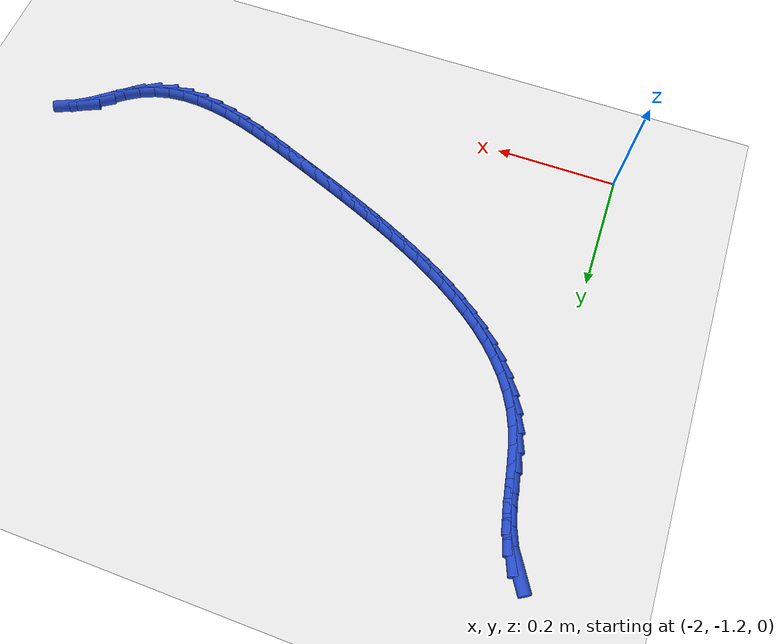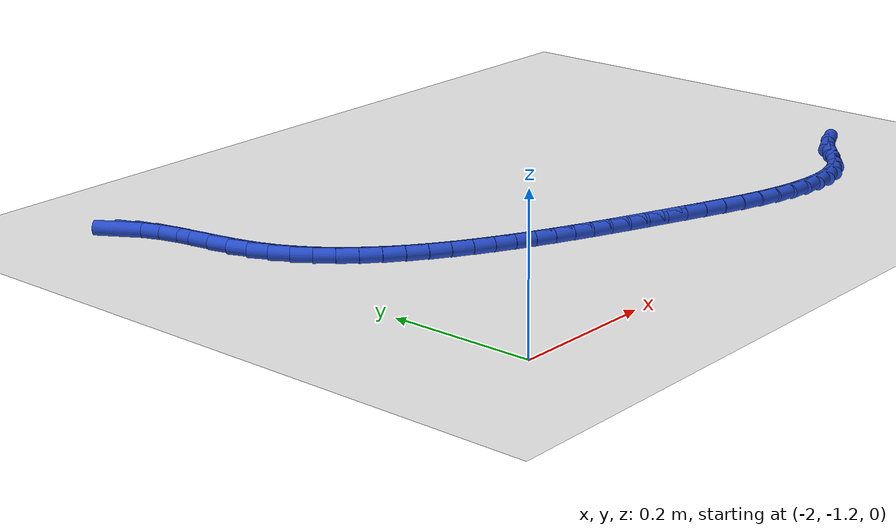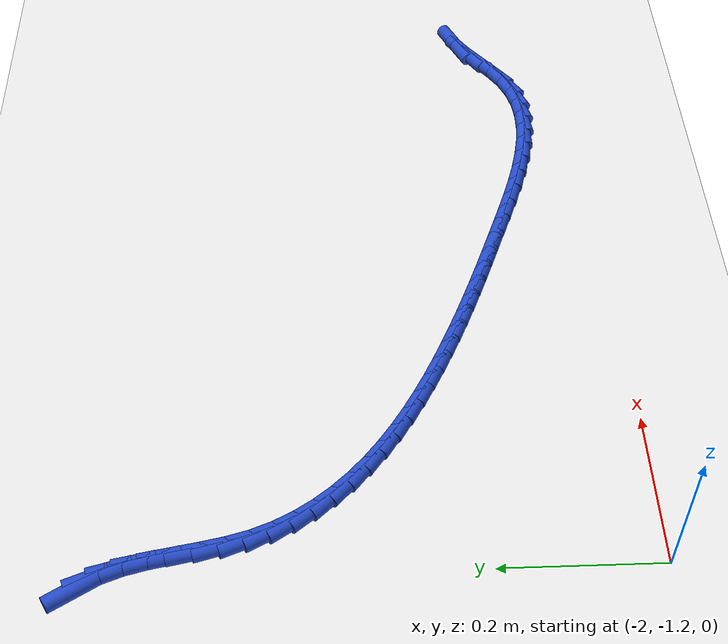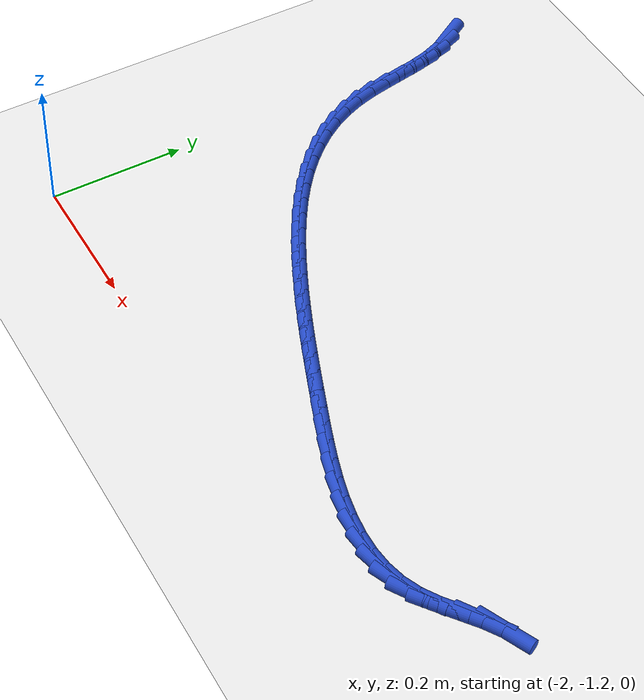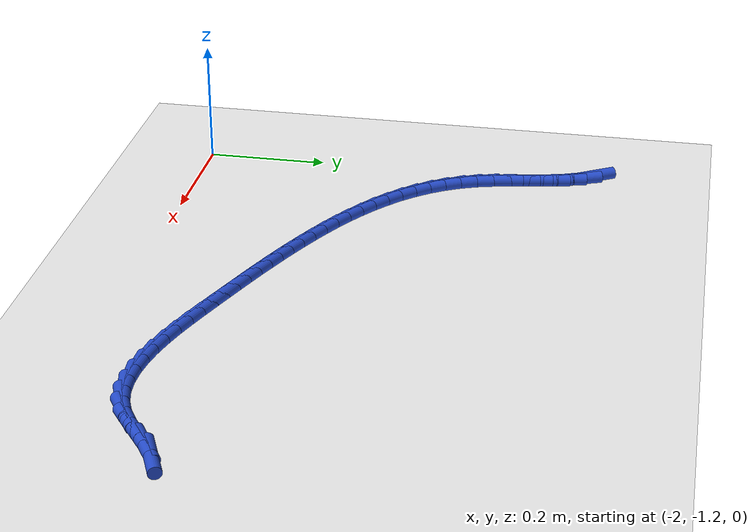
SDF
<sdf version="1.6">
 <world name="default">
  <model name="ground_plane">
   <static>1</static>
   <link name="link">
    <collision name="collision">
     <geometry><plane><normal>0 0 1</normal><size>100 100</size></plane></geometry>
     <surface><friction><ode><mu>100</mu><mu2>50</mu2></ode></friction></surface>
    </collision>
    <visual name="visual">
     <cast_shadows>0</cast_shadows>
     <geometry><plane><normal>0 0 1</normal><size>100 100</size></plane></geometry>
     <material>
      <script><uri>file://media/materials/scripts/gazebo.material</uri><name>Gazebo/WhiteGlow</name></script>
     </material>
    </visual>
   </link>
  </model>
  <model name="line">
   <link name="link_152">
    <pose>-2.0117051449335945 -0.5320468453960208 0.01 0 1.57 -1.0325894245453242</pose>
    <collision name="collision">
     <geometry><cylinder><radius>0.01</radius><length>0.08</length></cylinder></geometry>
    </collision>
    <visual name="visual">
     <material>
      <script><name>Gazebo/Blue</name><uri>file://media/materials/scripts/gazebo.material</uri></script>
     </material>
     <geometry><cylinder><radius>0.01</radius><length>0.08</length></cylinder></geometry>
    </visual>
   </link>
   <link name="link_153">
    <pose>-1.998287294087815 -0.5545225012858197 0.01 0 1.57 -1.2055088570923098</pose>
    <collision name="collision">
     <geometry><cylinder><radius>0.01</radius><length>0.08</length></cylinder></geometry>
    </collision>
    <visual name="visual">
     <material>
      <script><name>Gazebo/Blue</name><uri>file://media/materials/scripts/gazebo.material</uri></script>
     </material>
     <geometry><cylinder><radius>0.01</radius><length>0.08</length></cylinder></geometry>
    </visual>
   </link>
   <link name="link_154">
    <pose>-1.9885573423364409 -0.5799635068408499 0.01 0 1.57 -1.3176892582512643</pose>
    <collision name="collision">
     <geometry><cylinder><radius>0.01</radius><length>0.08</length></cylinder></geometry>
    </collision>
    <visual name="visual">
     <material>
      <script><name>Gazebo/Blue</name><uri>file://media/materials/scripts/gazebo.material</uri></script>
     </material>
     <geometry><cylinder><radius>0.01</radius><length>0.08</length></cylinder></geometry>
    </visual>
   </link>
   <link name="link_155">
    <pose>-1.9814133158013287 -0.607583496486258 0.01 0 1.57 -1.3781261660319097</pose>
    <collision name="collision">
     <geometry><cylinder><radius>0.01</radius><length>0.08</length></cylinder></geometry>
    </collision>
    <visual name="visual">
     <material>
      <script><name>Gazebo/Blue</name><uri>file://media/materials/scripts/gazebo.material</uri></script>
     </material>
     <geometry><cylinder><radius>0.01</radius><length>0.08</length></cylinder></geometry>
    </visual>
   </link>
   <link name="link_156">
    <pose>-1.9757532406043368 -0.636596104647192 0.01 0 1.57 -1.3944468982966307</pose>
    <collision name="collision">
     <geometry><cylinder><radius>0.01</radius><length>0.08</length></cylinder></geometry>
    </collision>
    <visual name="visual">
     <material>
      <script><name>Gazebo/Blue</name><uri>file://media/materials/scripts/gazebo.material</uri></script>
     </material>
     <geometry><cylinder><radius>0.01</radius><length>0.08</length></cylinder></geometry>
    </visual>
   </link>
   <link name="link_157">
    <pose>-1.9704751428673213 -0.6662149657487972 0.01 0 1.57 -1.3697992700527275</pose>
    <collision name="collision">
     <geometry><cylinder><radius>0.01</radius><length>0.08</length></cylinder></geometry>
    </collision>
    <visual name="visual">
     <material>
      <script><name>Gazebo/Blue</name><uri>file://media/materials/scripts/gazebo.material</uri></script>
     </material>
     <geometry><cylinder><radius>0.01</radius><length>0.08</length></cylinder></geometry>
    </visual>
   </link>
   <link name="link_158">
    <pose>-1.9644770487121412 -0.6956537142162216 0.01 0 1.57 -1.3027552645302882</pose>
    <collision name="collision">
     <geometry><cylinder><radius>0.01</radius><length>0.08</length></cylinder></geometry>
    </collision>
    <visual name="visual">
     <material>
      <script><name>Gazebo/Blue</name><uri>file://media/materials/scripts/gazebo.material</uri></script>
     </material>
     <geometry><cylinder><radius>0.01</radius><length>0.08</length></cylinder></geometry>
    </visual>
   </link>
   <link name="link_159">
    <pose>-1.9566571092704614 -0.7241260648157887 0.01 0 1.57 -1.1999468880581274</pose>
    <collision name="collision">
     <geometry><cylinder><radius>0.01</radius><length>0.08</length></cylinder></geometry>
    </collision>
    <visual name="visual">
     <material>
      <script><name>Gazebo/Blue</name><uri>file://media/materials/scripts/gazebo.material</uri></script>
     </material>
     <geometry><cylinder><radius>0.01</radius><length>0.08</length></cylinder></geometry>
    </visual>
   </link>
   <link name="link_160">
    <pose>-1.9461966496676708 -0.7510277222876124 0.01 0 1.57 -1.0950335316175266</pose>
    <collision name="collision">
     <geometry><cylinder><radius>0.01</radius><length>0.08</length></cylinder></geometry>
    </collision>
    <visual name="visual">
     <material>
      <script><name>Gazebo/Blue</name><uri>file://media/materials/scripts/gazebo.material</uri></script>
     </material>
     <geometry><cylinder><radius>0.01</radius><length>0.08</length></cylinder></geometry>
    </visual>
   </link>
   <link name="link_161">
    <pose>-1.9331631273899914 -0.7763238900146856 0.01 0 1.57 -0.9968584307055662</pose>
    <collision name="collision">
     <geometry><cylinder><radius>0.01</radius><length>0.08</length></cylinder></geometry>
    </collision>
    <visual name="visual">
     <material>
      <script><name>Gazebo/Blue</name><uri>file://media/materials/scripts/gazebo.material</uri></script>
     </material>
     <geometry><cylinder><radius>0.01</radius><length>0.08</length></cylinder></geometry>
    </visual>
   </link>
   <link name="link_162">
    <pose>-1.9177968641425782 -0.8000908675801119 0.01 0 1.57 -0.9068756871852821</pose>
    <collision name="collision">
     <geometry><cylinder><radius>0.01</radius><length>0.08</length></cylinder></geometry>
    </collision>
    <visual name="visual">
     <material>
      <script><name>Gazebo/Blue</name><uri>file://media/materials/scripts/gazebo.material</uri></script>
     </material>
     <geometry><cylinder><radius>0.01</radius><length>0.08</length></cylinder></geometry>
    </visual>
   </link>
   <link name="link_163">
    <pose>-1.9003381816305867 -0.8224049545669954 0.01 0 1.57 -0.8257932108269734</pose>
    <collision name="collision">
     <geometry><cylinder><radius>0.01</radius><length>0.08</length></cylinder></geometry>
    </collision>
    <visual name="visual">
     <material>
      <script><name>Gazebo/Blue</name><uri>file://media/materials/scripts/gazebo.material</uri></script>
     </material>
     <geometry><cylinder><radius>0.01</radius><length>0.08</length></cylinder></geometry>
    </visual>
   </link>
   <link name="link_164">
    <pose>-1.881027401559171 -0.8433424505584398 0.01 0 1.57 -0.7537184565327799</pose>
    <collision name="collision">
     <geometry><cylinder><radius>0.01</radius><length>0.08</length></cylinder></geometry>
    </collision>
    <visual name="visual">
     <material>
      <script><name>Gazebo/Blue</name><uri>file://media/materials/scripts/gazebo.material</uri></script>
     </material>
     <geometry><cylinder><radius>0.01</radius><length>0.08</length></cylinder></geometry>
    </visual>
   </link>
   <link name="link_165">
    <pose>-1.8601048456334857 -0.8629796551375496 0.01 0 1.57 -0.69035105141206</pose>
    <collision name="collision">
     <geometry><cylinder><radius>0.01</radius><length>0.08</length></cylinder></geometry>
    </collision>
    <visual name="visual">
     <material>
      <script><name>Gazebo/Blue</name><uri>file://media/materials/scripts/gazebo.material</uri></script>
     </material>
     <geometry><cylinder><radius>0.01</radius><length>0.08</length></cylinder></geometry>
    </visual>
   </link>
   <link name="link_166">
    <pose>-1.8378108355586864 -0.8813928678874274 0.01 0 1.57 -0.6351619930854608</pose>
    <collision name="collision">
     <geometry><cylinder><radius>0.01</radius><length>0.08</length></cylinder></geometry>
    </collision>
    <visual name="visual">
     <material>
      <script><name>Gazebo/Blue</name><uri>file://media/materials/scripts/gazebo.material</uri></script>
     </material>
     <geometry><cylinder><radius>0.01</radius><length>0.08</length></cylinder></geometry>
    </visual>
   </link>
   <link name="link_167">
    <pose>-1.8143856930399274 -0.8986583883911771 0.01 0 1.57 -0.5875324610035325</pose>
    <collision name="collision">
     <geometry><cylinder><radius>0.01</radius><length>0.08</length></cylinder></geometry>
    </collision>
    <visual name="visual">
     <material>
      <script><name>Gazebo/Blue</name><uri>file://media/materials/scripts/gazebo.material</uri></script>
     </material>
     <geometry><cylinder><radius>0.01</radius><length>0.08</length></cylinder></geometry>
    </visual>
   </link>
   <link name="link_168">
    <pose>-1.7900697397823644 -0.9148525162319033 0.01 0 1.57 -0.5468493320388581</pose>
    <collision name="collision">
     <geometry><cylinder><radius>0.01</radius><length>0.08</length></cylinder></geometry>
    </collision>
    <visual name="visual">
     <material>
      <script><name>Gazebo/Blue</name><uri>file://media/materials/scripts/gazebo.material</uri></script>
     </material>
     <geometry><cylinder><radius>0.01</radius><length>0.08</length></cylinder></geometry>
    </visual>
   </link>
   <link name="link_169">
    <pose>-1.7651032974911514 -0.9300515509927096 0.01 0 1.57 -0.5125660088315089</pose>
    <collision name="collision">
     <geometry><cylinder><radius>0.01</radius><length>0.08</length></cylinder></geometry>
    </collision>
    <visual name="visual">
     <material>
      <script><name>Gazebo/Blue</name><uri>file://media/materials/scripts/gazebo.material</uri></script>
     </material>
     <geometry><cylinder><radius>0.01</radius><length>0.08</length></cylinder></geometry>
    </visual>
   </link>
   <link name="link_170">
    <pose>-1.7397266878714435 -0.9443317922566998 0.01 0 1.57 -0.4842401712869968</pose>
    <collision name="collision">
     <geometry><cylinder><radius>0.01</radius><length>0.08</length></cylinder></geometry>
    </collision>
    <visual name="visual">
     <material>
      <script><name>Gazebo/Blue</name><uri>file://media/materials/scripts/gazebo.material</uri></script>
     </material>
     <geometry><cylinder><radius>0.01</radius><length>0.08</length></cylinder></geometry>
    </visual>
   </link>
   <link name="link_171">
    <pose>-1.7141802326283955 -0.9577695396069774 0.01 0 1.57 -0.4615549454100223</pose>
    <collision name="collision">
     <geometry><cylinder><radius>0.01</radius><length>0.08</length></cylinder></geometry>
    </collision>
    <visual name="visual">
     <material>
      <script><name>Gazebo/Blue</name><uri>file://media/materials/scripts/gazebo.material</uri></script>
     </material>
     <geometry><cylinder><radius>0.01</radius><length>0.08</length></cylinder></geometry>
    </visual>
   </link>
   <link name="link_172">
    <pose>-1.6887038919279704 -0.9704411377533622 0.01 0 1.57 -0.4432140611177519</pose>
    <collision name="collision">
     <geometry><cylinder><radius>0.01</radius><length>0.08</length></cylinder></geometry>
    </collision>
    <visual name="visual">
     <material>
      <script><name>Gazebo/Blue</name><uri>file://media/materials/scripts/gazebo.material</uri></script>
     </material>
     <geometry><cylinder><radius>0.01</radius><length>0.08</length></cylinder></geometry>
    </visual>
   </link>
   <link name="link_173">
    <pose>-1.6634374740991313 -0.9824354321899592 0.01 0 1.57 -0.4266987657591983</pose>
    <collision name="collision">
     <geometry><cylinder><radius>0.01</radius><length>0.08</length></cylinder></geometry>
    </collision>
    <visual name="visual">
     <material>
      <script><name>Gazebo/Blue</name><uri>file://media/materials/scripts/gazebo.material</uri></script>
     </material>
     <geometry><cylinder><radius>0.01</radius><length>0.08</length></cylinder></geometry>
    </visual>
   </link>
   <link name="link_174">
    <pose>-1.638284512138975 -0.9938707599014378 0.01 0 1.57 -0.41197888196226135</pose>
    <collision name="collision">
     <geometry><cylinder><radius>0.01</radius><length>0.08</length></cylinder></geometry>
    </collision>
    <visual name="visual">
     <material>
      <script><name>Gazebo/Blue</name><uri>file://media/materials/scripts/gazebo.material</uri></script>
     </material>
     <geometry><cylinder><radius>0.01</radius><length>0.08</length></cylinder></geometry>
    </visual>
   </link>
   <link name="link_175">
    <pose>-1.6131144827029524 -1.0048697087279002 0.01 0 1.57 -0.3993644971627681</pose>
    <collision name="collision">
     <geometry><cylinder><radius>0.01</radius><length>0.08</length></cylinder></geometry>
    </collision>
    <visual name="visual">
     <material>
      <script><name>Gazebo/Blue</name><uri>file://media/materials/scripts/gazebo.material</uri></script>
     </material>
     <geometry><cylinder><radius>0.01</radius><length>0.08</length></cylinder></geometry>
    </visual>
   </link>
   <link name="link_176">
    <pose>-1.5877968624465137 -1.0155548665094498 0.01 0 1.57 -0.3890873128834783</pose>
    <collision name="collision">
     <geometry><cylinder><radius>0.01</radius><length>0.08</length></cylinder></geometry>
    </collision>
    <visual name="visual">
     <material>
      <script><name>Gazebo/Blue</name><uri>file://media/materials/scripts/gazebo.material</uri></script>
     </material>
     <geometry><cylinder><radius>0.01</radius><length>0.08</length></cylinder></geometry>
    </visual>
   </link>
   <link name="link_177">
    <pose>-1.5622011280251085 -1.0260488210861884 0.01 0 1.57 -0.38128817727152114</pose>
    <collision name="collision">
     <geometry><cylinder><radius>0.01</radius><length>0.08</length></cylinder></geometry>
    </collision>
    <visual name="visual">
     <material>
      <script><name>Gazebo/Blue</name><uri>file://media/materials/scripts/gazebo.material</uri></script>
     </material>
     <geometry><cylinder><radius>0.01</radius><length>0.08</length></cylinder></geometry>
    </visual>
   </link>
   <link name="link_178">
    <pose>-1.5361967560941876 -1.0364741602982195 0.01 0 1.57 -0.3760131498353158</pose>
    <collision name="collision">
     <geometry><cylinder><radius>0.01</radius><length>0.08</length></cylinder></geometry>
    </collision>
    <visual name="visual">
     <material>
      <script><name>Gazebo/Blue</name><uri>file://media/materials/scripts/gazebo.material</uri></script>
     </material>
     <geometry><cylinder><radius>0.01</radius><length>0.08</length></cylinder></geometry>
    </visual>
   </link>
   <link name="link_179">
    <pose>-1.5096532233092015 -1.0469534719856457 0.01 0 1.57 -0.37321784291937765</pose>
    <collision name="collision">
     <geometry><cylinder><radius>0.01</radius><length>0.08</length></cylinder></geometry>
    </collision>
    <visual name="visual">
     <material>
      <script><name>Gazebo/Blue</name><uri>file://media/materials/scripts/gazebo.material</uri></script>
     </material>
     <geometry><cylinder><radius>0.01</radius><length>0.08</length></cylinder></geometry>
    </visual>
   </link>
   <link name="link_180">
    <pose>-1.482440006332732 -1.0576093439764602 0.01 0 1.57 -0.3704847200510748</pose>
    <collision name="collision">
     <geometry><cylinder><radius>0.01</radius><length>0.08</length></cylinder></geometry>
    </collision>
    <visual name="visual">
     <material>
      <script><name>Gazebo/Blue</name><uri>file://media/materials/scripts/gazebo.material</uri></script>
     </material>
     <geometry><cylinder><radius>0.01</radius><length>0.08</length></cylinder></geometry>
    </visual>
   </link>
   <link name="link_181">
    <pose>-1.4544831091293253 -1.06846838734073 0.01 0 1.57 -0.3588853184038261</pose>
    <collision name="collision">
     <geometry><cylinder><radius>0.01</radius><length>0.08</length></cylinder></geometry>
    </collision>
    <visual name="visual">
     <material>
      <script><name>Gazebo/Blue</name><uri>file://media/materials/scripts/gazebo.material</uri></script>
     </material>
     <geometry><cylinder><radius>0.01</radius><length>0.08</length></cylinder></geometry>
    </visual>
   </link>
   <link name="link_182">
    <pose>-1.425931251357447 -1.07917906790722 0.01 0 1.57 -0.33629084404893106</pose>
    <collision name="collision">
     <geometry><cylinder><radius>0.01</radius><length>0.08</length></cylinder></geometry>
    </collision>
    <visual name="visual">
     <material>
      <script><name>Gazebo/Blue</name><uri>file://media/materials/scripts/gazebo.material</uri></script>
     </material>
     <geometry><cylinder><radius>0.01</radius><length>0.08</length></cylinder></geometry>
    </visual>
   </link>
   <link name="link_183">
    <pose>-1.3969879959150784 -1.0892967340881492 0.01 0 1.57 -0.3021508516372771</pose>
    <collision name="collision">
     <geometry><cylinder><radius>0.01</radius><length>0.08</length></cylinder></geometry>
    </collision>
    <visual name="visual">
     <material>
      <script><name>Gazebo/Blue</name><uri>file://media/materials/scripts/gazebo.material</uri></script>
     </material>
     <geometry><cylinder><radius>0.01</radius><length>0.08</length></cylinder></geometry>
    </visual>
   </link>
   <link name="link_184">
    <pose>-1.3678569057002048 -1.0983767342957371 0.01 0 1.57 -0.25525862849360703</pose>
    <collision name="collision">
     <geometry><cylinder><radius>0.01</radius><length>0.08</length></cylinder></geometry>
    </collision>
    <visual name="visual">
     <material>
      <script><name>Gazebo/Blue</name><uri>file://media/materials/scripts/gazebo.material</uri></script>
     </material>
     <geometry><cylinder><radius>0.01</radius><length>0.08</length></cylinder></geometry>
    </visual>
   </link>
   <link name="link_185">
    <pose>-1.3387415436108083 -1.1059744169422023 0.01 0 1.57 -0.1937825238472297</pose>
    <collision name="collision">
     <geometry><cylinder><radius>0.01</radius><length>0.08</length></cylinder></geometry>
    </collision>
    <visual name="visual">
     <material>
      <script><name>Gazebo/Blue</name><uri>file://media/materials/scripts/gazebo.material</uri></script>
     </material>
     <geometry><cylinder><radius>0.01</radius><length>0.08</length></cylinder></geometry>
    </visual>
   </link>
   <link name="link_186">
    <pose>-1.3098454725448734 -1.1116451304397632 0.01 0 1.57 -0.11535215844670921</pose>
    <collision name="collision">
     <geometry><cylinder><radius>0.01</radius><length>0.08</length></cylinder></geometry>
    </collision>
    <visual name="visual">
     <material>
      <script><name>Gazebo/Blue</name><uri>file://media/materials/scripts/gazebo.material</uri></script>
     </material>
     <geometry><cylinder><radius>0.01</radius><length>0.08</length></cylinder></geometry>
    </visual>
   </link>
   <link name="link_187">
    <pose>-1.2813722554003826 -1.1149442232006386 0.01 0 1.57 -0.017336715793493662</pose>
    <collision name="collision">
     <geometry><cylinder><radius>0.01</radius><length>0.08</length></cylinder></geometry>
    </collision>
    <visual name="visual">
     <material>
      <script><name>Gazebo/Blue</name><uri>file://media/materials/scripts/gazebo.material</uri></script>
     </material>
     <geometry><cylinder><radius>0.01</radius><length>0.08</length></cylinder></geometry>
    </visual>
   </link>
   <link name="link_188">
    <pose>-1.2535254550753197 -1.1154270436370477 0.01 0 1.57 0.10246851505401659</pose>
    <collision name="collision">
     <geometry><cylinder><radius>0.01</radius><length>0.08</length></cylinder></geometry>
    </collision>
    <visual name="visual">
     <material>
      <script><name>Gazebo/Blue</name><uri>file://media/materials/scripts/gazebo.material</uri></script>
     </material>
     <geometry><cylinder><radius>0.01</radius><length>0.08</length></cylinder></geometry>
    </visual>
   </link>
   <link name="link_189">
    <pose>-1.2265086344676686 -1.112648940161209 0.01 0 1.57 0.24453885605370293</pose>
    <collision name="collision">
     <geometry><cylinder><radius>0.01</radius><length>0.08</length></cylinder></geometry>
    </collision>
    <visual name="visual">
     <material>
      <script><name>Gazebo/Blue</name><uri>file://media/materials/scripts/gazebo.material</uri></script>
     </material>
     <geometry><cylinder><radius>0.01</radius><length>0.08</length></cylinder></geometry>
    </visual>
   </link>
   <link name="link_190">
    <pose>-1.200525356475413 -1.1061652611853412 0.01 0 1.57 0.40586107339789657</pose>
    <collision name="collision">
     <geometry><cylinder><radius>0.01</radius><length>0.08</length></cylinder></geometry>
    </collision>
    <visual name="visual">
     <material>
      <script><name>Gazebo/Blue</name><uri>file://media/materials/scripts/gazebo.material</uri></script>
     </material>
     <geometry><cylinder><radius>0.01</radius><length>0.08</length></cylinder></geometry>
    </visual>
   </link>
   <link name="link_191">
    <pose>-1.1757791839965357 -1.0955313551216634 0.01 0 1.57 0.5688855504918173</pose>
    <collision name="collision">
     <geometry><cylinder><radius>0.01</radius><length>0.08</length></cylinder></geometry>
    </collision>
    <visual name="visual">
     <material>
      <script><name>Gazebo/Blue</name><uri>file://media/materials/scripts/gazebo.material</uri></script>
     </material>
     <geometry><cylinder><radius>0.01</radius><length>0.08</length></cylinder></geometry>
    </visual>
   </link>
   <link name="link_192">
    <pose>-1.152395652494487 -1.0805799867487151 0.01 0 1.57 0.6622111980315909</pose>
    <collision name="collision">
     <geometry><cylinder><radius>0.01</radius><length>0.08</length></cylinder></geometry>
    </collision>
    <visual name="visual">
     <material>
      <script><name>Gazebo/Blue</name><uri>file://media/materials/scripts/gazebo.material</uri></script>
     </material>
     <geometry><cylinder><radius>0.01</radius><length>0.08</length></cylinder></geometry>
    </visual>
   </link>
   <link name="link_193">
    <pose>-1.1299546804337375 -1.063083790919771 0.01 0 1.57 0.6669639090213912</pose>
    <collision name="collision">
     <geometry><cylinder><radius>0.01</radius><length>0.08</length></cylinder></geometry>
    </collision>
    <visual name="visual">
     <material>
      <script><name>Gazebo/Blue</name><uri>file://media/materials/scripts/gazebo.material</uri></script>
     </material>
     <geometry><cylinder><radius>0.01</radius><length>0.08</length></cylinder></geometry>
    </visual>
   </link>
   <link name="link_194">
    <pose>-1.1078032833897764 -1.045643458332219 0.01 0 1.57 0.5817248525595903</pose>
    <collision name="collision">
     <geometry><cylinder><radius>0.01</radius><length>0.08</length></cylinder></geometry>
    </collision>
    <visual name="visual">
     <material>
      <script><name>Gazebo/Blue</name><uri>file://media/materials/scripts/gazebo.material</uri></script>
     </material>
     <geometry><cylinder><radius>0.01</radius><length>0.08</length></cylinder></geometry>
    </visual>
   </link>
   <link name="link_195">
    <pose>-1.0852914169844017 -1.030838833788298 0.01 0 1.57 0.4325512908376085</pose>
    <collision name="collision">
     <geometry><cylinder><radius>0.01</radius><length>0.08</length></cylinder></geometry>
    </collision>
    <visual name="visual">
     <material>
      <script><name>Gazebo/Blue</name><uri>file://media/materials/scripts/gazebo.material</uri></script>
     </material>
     <geometry><cylinder><radius>0.01</radius><length>0.08</length></cylinder></geometry>
    </visual>
   </link>
  </model>
 </world>
</sdf>
